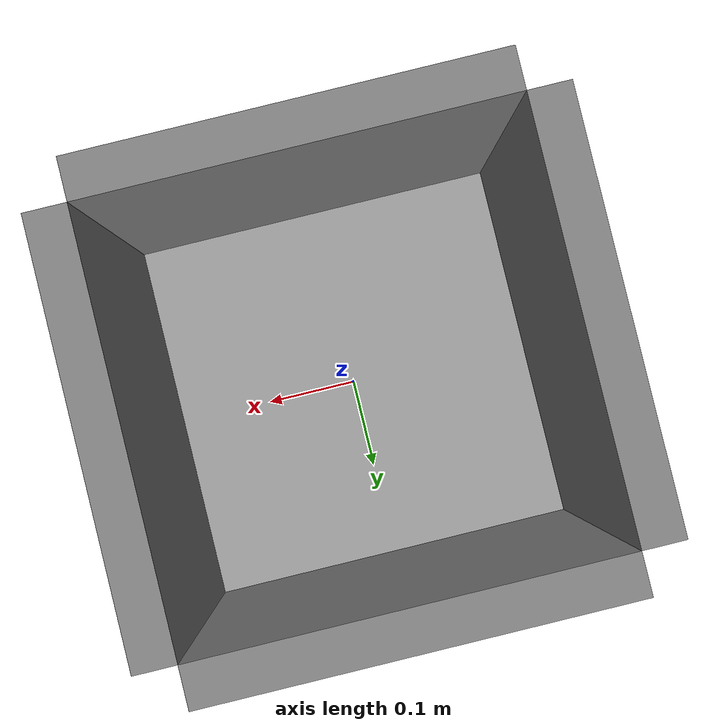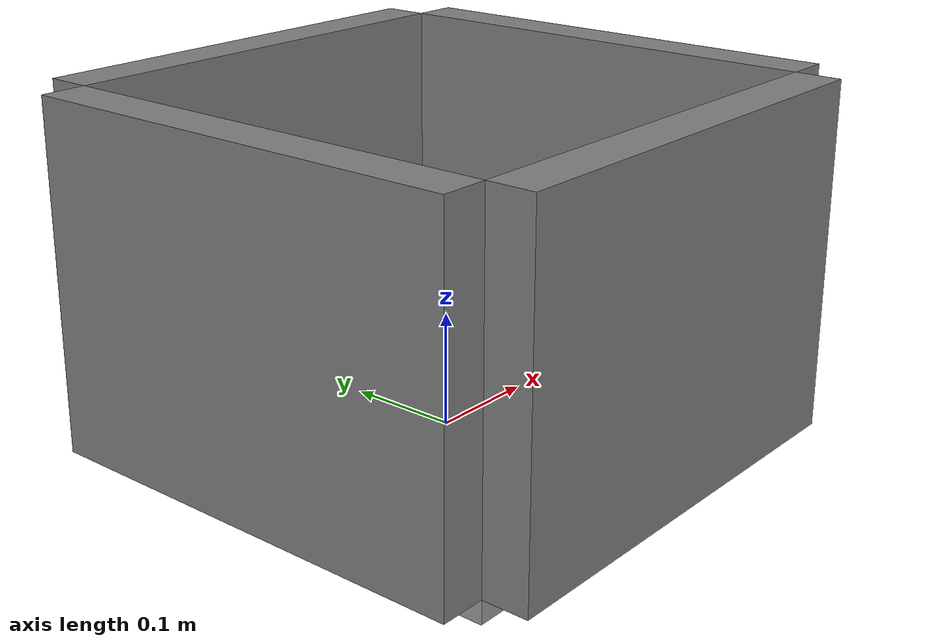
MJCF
<mujoco model="bin">

    <worldbody>

        <body name="bin" pos="0 0 0">

            <!-- bottom -->
            <geom name="bin_bottom"
                  type="box"
                  size="0.2 0.2 0.02"
                  pos="0 0 0"
                  rgba="0.6 0.6 0.6 1"/>

            <!-- wall +x -->
            <geom name="wall_x_pos"
                  type="box"
                  size="0.02 0.2 0.15"
                  pos="0.22 0 0.15"/>

            <!-- wall -x -->
            <geom name="wall_x_neg"
                  type="box"
                  size="0.02 0.2 0.15"
                  pos="-0.22 0 0.15"/>

            <!-- wall +y -->
            <geom name="wall_y_pos"
                  type="box"
                  size="0.2 0.02 0.15"
                  pos="0 0.22 0.15"/>

            <!-- wall -y -->
            <geom name="wall_y_neg"
                  type="box"
                  size="0.2 0.02 0.15"
                  pos="0 -0.22 0.15"/>

        </body>

    </worldbody>

</mujoco>
